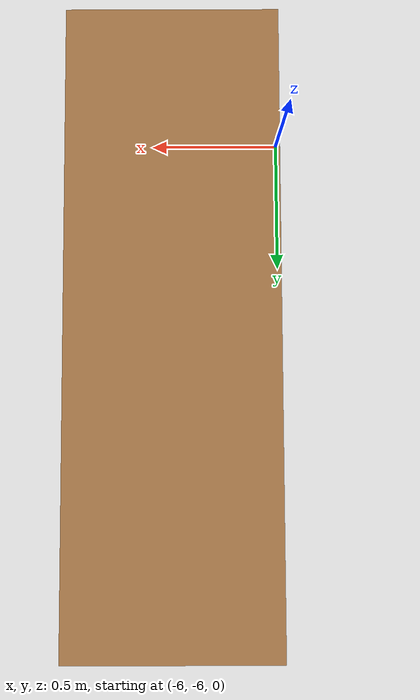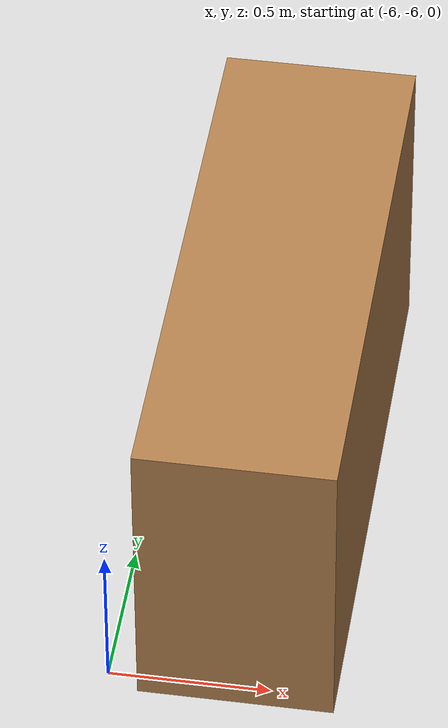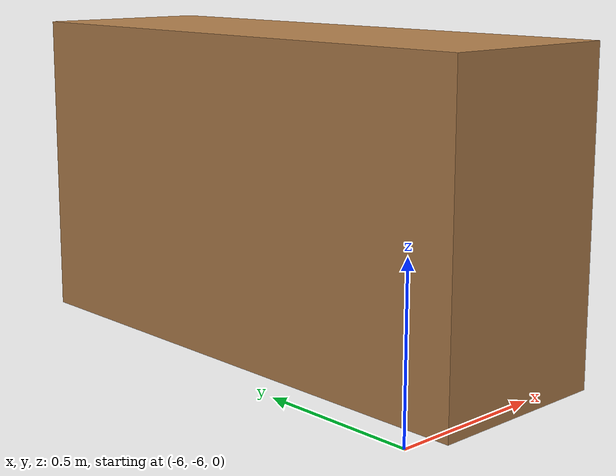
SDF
<?xml version="1.0" ?>
<sdf version='1.4'>
  <model name='barra'>
    <link name='barra_link'>
      <pose>0 0 0 0 -0 0</pose>
      <inertial>
        <pose>0 0 0.5 0 -0 0</pose>
        <mass>50</mass>
        <inertia>
          <ixx>5</ixx>
          <ixy>0</ixy>
          <ixz>0</ixz>
          <iyy>5</iyy>
          <iyz>0</iyz>
          <izz>5</izz>
        </inertia>
      </inertial>
      <collision name='barra_link_collision'>
        <pose>0 0 0.5 0 -0 0</pose>
        <geometry>
          <box>
            <size>1.8 0.6 1</size>
          </box>
        </geometry>
        <surface>
          <contact>
            <ode/>
          </contact>
          <friction>
            <ode>
              <mu>100</mu>
              <mu2>100</mu2>
            </ode>
          </friction>
          <bounce/>
        </surface>
        <max_contacts>10</max_contacts>
      </collision>
      <visual name='barra_link_visual'>
        <pose>0 0 0.5 0 -0 0</pose>
        <geometry>
          <box>
            <size>1.8 0.6 1</size>
          </box>
        </geometry>
        <material>
          <script>
            <name>Gazebo/Wood</name>
            <uri>__default__</uri>
          </script>
        </material>
      </visual>
      <gravity>1</gravity>
      <velocity_decay>
        <linear>0</linear>
        <angular>0</angular>
      </velocity_decay>
      <self_collide>1</self_collide>
      <kinematic>0</kinematic>
    </link>
    <pose>-5.6 -5.16 0 0 -0 1.57</pose>
    <static>0</static>
  </model>
</sdf>
